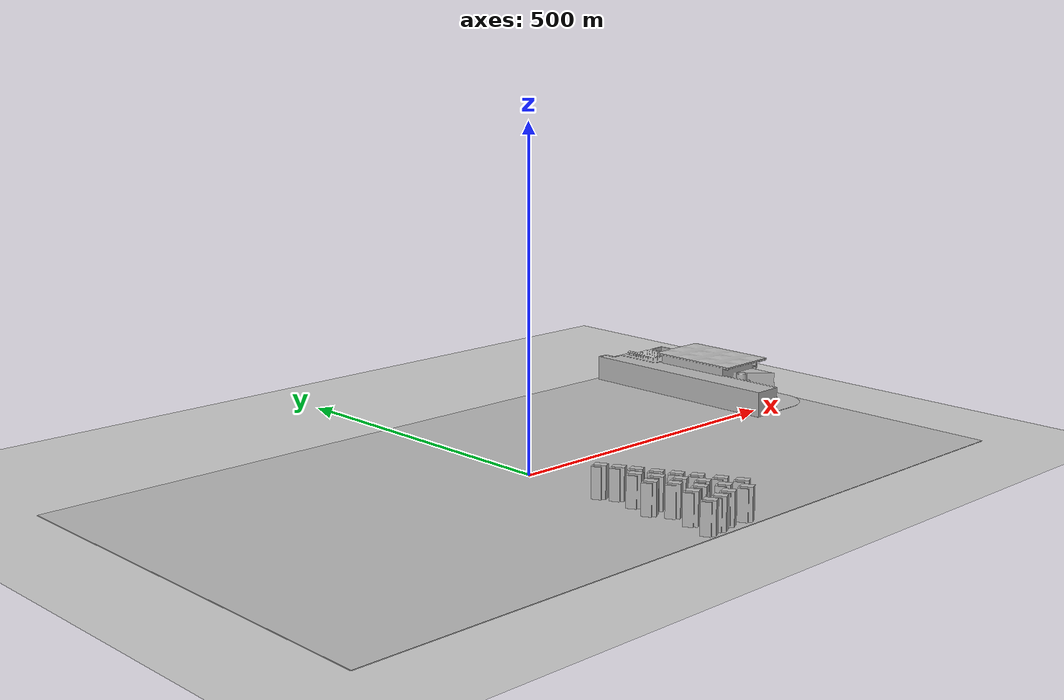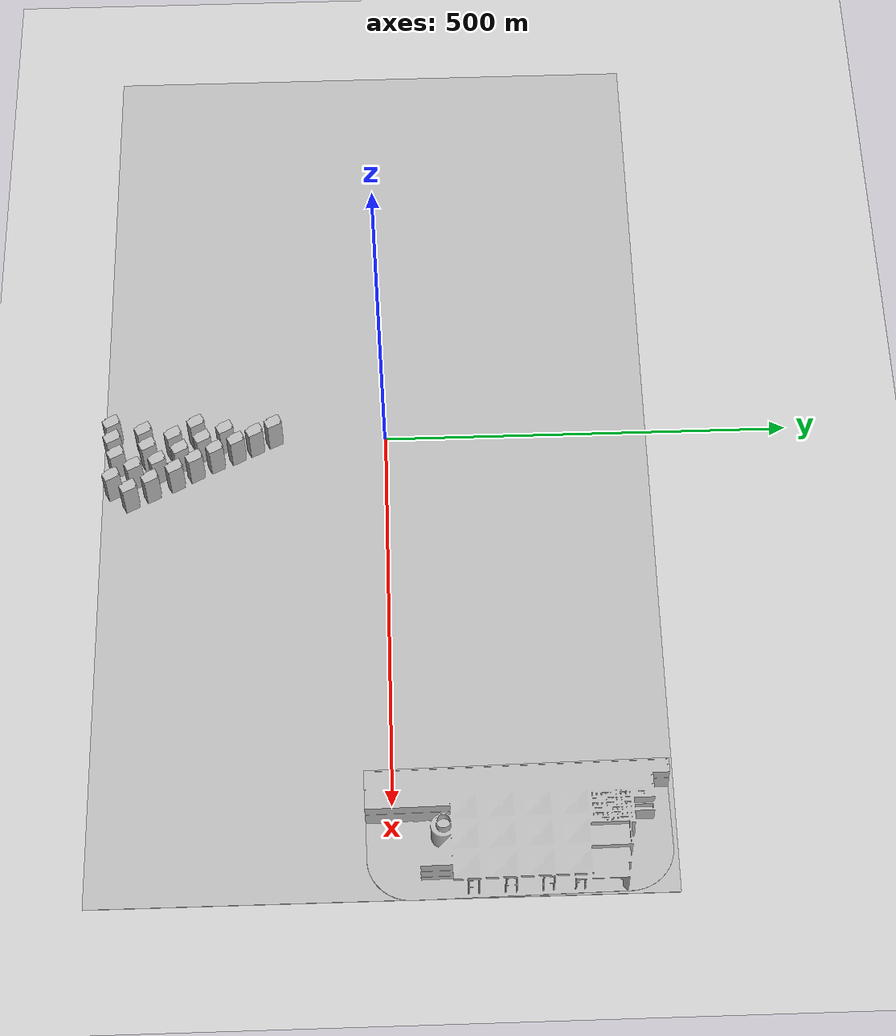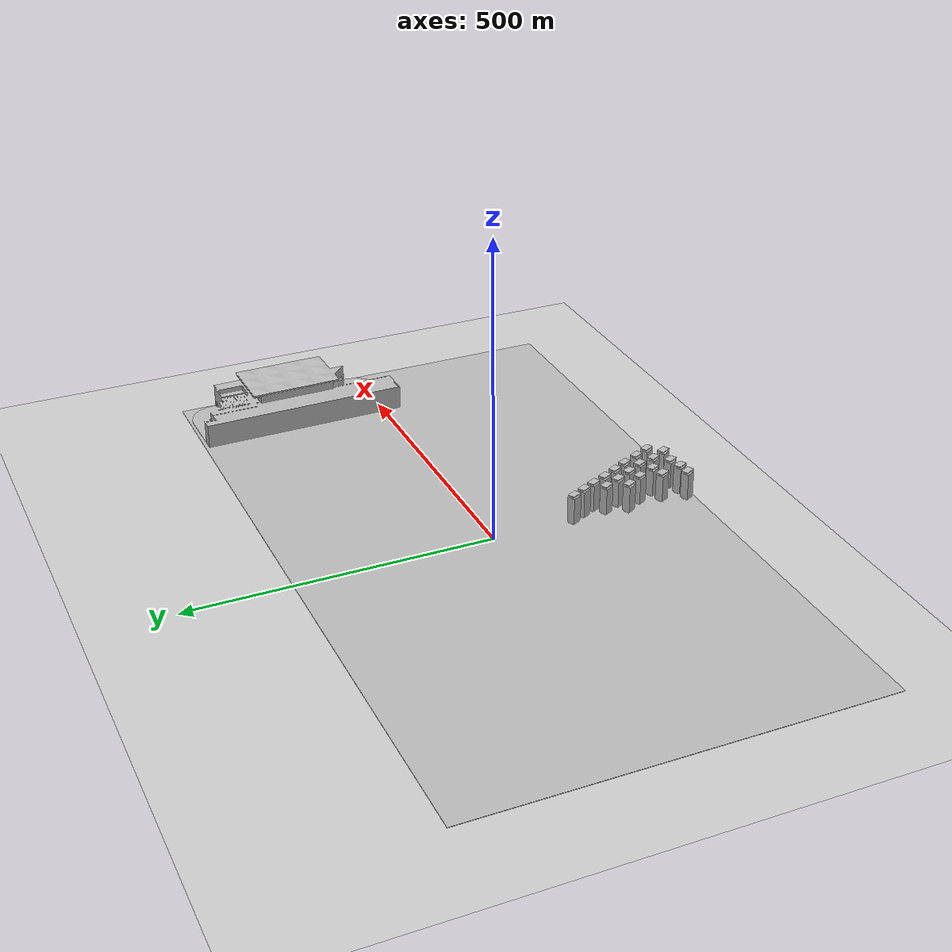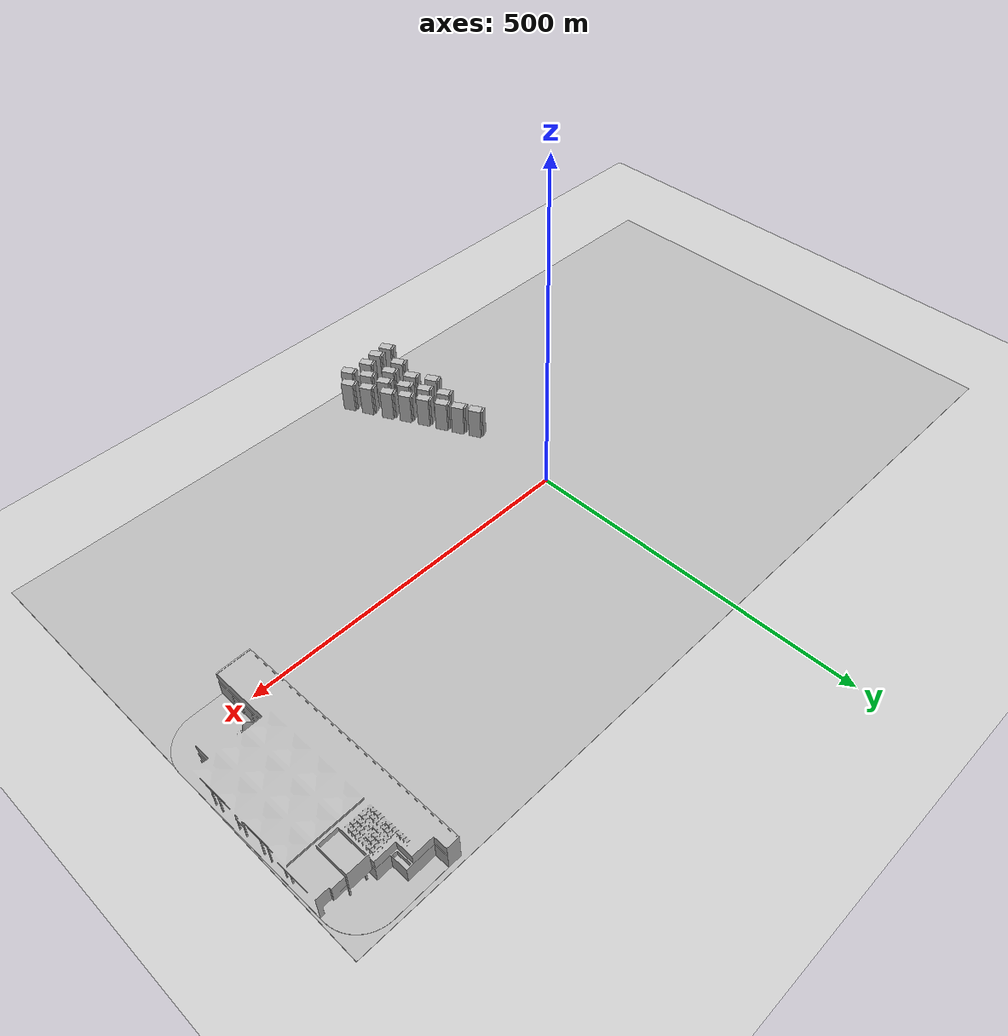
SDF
<sdf version="1.7">
 <world name="default">
  <model name="ground_plane">
   <static>1</static>
   <link name="link">
    <collision name="collision">
     <geometry><plane><normal>0 0 1</normal><size>100 100</size></plane></geometry>
     <surface><friction><ode><mu>100</mu><mu2>50</mu2></ode></friction></surface>
    </collision>
    <visual name="visual">
     <cast_shadows>0</cast_shadows>
     <geometry><plane><normal>0 0 1</normal><size>100 100</size></plane></geometry>
     <material>
      <script><uri>file://media/materials/scripts/gazebo.material</uri><name>Gazebo/Grey</name></script>
     </material>
    </visual>
   </link>
  </model>
  <model name="apartment1_clone_15_clone_3_clone">
   <static>1</static>
   <link name="link_0">
    <inertial>
     <mass>1</mass>
     <inertia>
      <ixx>0.166667</ixx>
      <ixy>0</ixy>
      <ixz>0</ixz>
      <iyy>0.166667</iyy>
      <iyz>0</iyz>
      <izz>0.166667</izz>
     </inertia>
    </inertial>
    <pose>1e-06 -0 0 0 -0 0</pose>
    <visual name="visual">
     <geometry>
      <mesh><uri>model://apartment1/scripts/apartment1.dae</uri><scale>0.3 0.3 0.4</scale></mesh>
     </geometry>
     <material>
      <lighting>1</lighting>
      <script><uri>model://apartment1/scripts/apartment1.jpg</uri><name>__default__</name></script>
      <shader type="pixel"/>
     </material>
    </visual>
    <collision name="collision">
     <geometry>
      <mesh><uri>model://apartment1/scripts/apartment1.dae</uri><scale>0.3 0.3 0.4</scale></mesh>
     </geometry>
     <surface>
      <friction>
       <ode><mu>1</mu><mu2>1</mu2><fdir1>0 0 0</fdir1><slip1>0</slip1><slip2>0</slip2></ode>
       <torsional>
        <coefficient>1</coefficient>
        <patch_radius>0</patch_radius>
        <surface_radius>0</surface_radius>
        <use_patch_radius>1</use_patch_radius>
        <ode><slip>0</slip></ode>
       </torsional>
      </friction>
      <bounce><restitution_coefficient>0</restitution_coefficient><threshold>1e+06</threshold></bounce>
      <contact>
       <collide_without_contact>0</collide_without_contact>
       <collide_without_contact_bitmask>1</collide_without_contact_bitmask>
       <collide_bitmask>1</collide_bitmask>
       <ode>
        <soft_cfm>0</soft_cfm>
        <soft_erp>0.2</soft_erp>
        <kp>1e+13</kp>
        <kd>1</kd>
        <max_vel>0.01</max_vel>
        <min_depth>0</min_depth>
       </ode>
       <bullet>
        <split_impulse>1</split_impulse>
        <split_impulse_penetration_threshold>-0.01</split_impulse_penetration_threshold>
        <soft_cfm>0</soft_cfm>
        <soft_erp>0.2</soft_erp>
        <kp>1e+13</kp>
        <kd>1</kd>
       </bullet>
      </contact>
     </surface>
    </collision>
   </link>
   <static>0</static>
   <pose>1.05623 -139.042 0 0 -0 0.446505</pose>
  </model>
  <model name="apartment1_clone_15_clone_3_clone_0">
   <static>1</static>
   <link name="link_0">
    <inertial>
     <mass>1</mass>
     <inertia>
      <ixx>0.166667</ixx>
      <ixy>0</ixy>
      <ixz>0</ixz>
      <iyy>0.166667</iyy>
      <iyz>0</iyz>
      <izz>0.166667</izz>
     </inertia>
    </inertial>
    <pose>1e-06 -0 0 0 -0 0</pose>
    <visual name="visual">
     <geometry>
      <mesh><uri>model://apartment1/scripts/apartment1.dae</uri><scale>0.3 0.3 0.4</scale></mesh>
     </geometry>
     <material>
      <lighting>1</lighting>
      <script><uri>model://apartment1/scripts/apartment1.jpg</uri><name>__default__</name></script>
      <shader type="pixel"/>
     </material>
    </visual>
    <collision name="collision">
     <geometry>
      <mesh><uri>model://apartment1/scripts/apartment1.dae</uri><scale>0.3 0.3 0.4</scale></mesh>
     </geometry>
     <surface>
      <friction>
       <ode><mu>1</mu><mu2>1</mu2><fdir1>0 0 0</fdir1><slip1>0</slip1><slip2>0</slip2></ode>
       <torsional>
        <coefficient>1</coefficient>
        <patch_radius>0</patch_radius>
        <surface_radius>0</surface_radius>
        <use_patch_radius>1</use_patch_radius>
        <ode><slip>0</slip></ode>
       </torsional>
      </friction>
      <bounce><restitution_coefficient>0</restitution_coefficient><threshold>1e+06</threshold></bounce>
      <contact>
       <collide_without_contact>0</collide_without_contact>
       <collide_without_contact_bitmask>1</collide_without_contact_bitmask>
       <collide_bitmask>1</collide_bitmask>
       <ode>
        <soft_cfm>0</soft_cfm>
        <soft_erp>0.2</soft_erp>
        <kp>1e+13</kp>
        <kd>1</kd>
        <max_vel>0.01</max_vel>
        <min_depth>0</min_depth>
       </ode>
       <bullet>
        <split_impulse>1</split_impulse>
        <split_impulse_penetration_threshold>-0.01</split_impulse_penetration_threshold>
        <soft_cfm>0</soft_cfm>
        <soft_erp>0.2</soft_erp>
        <kp>1e+13</kp>
        <kd>1</kd>
       </bullet>
      </contact>
     </surface>
    </collision>
   </link>
   <static>0</static>
   <pose>12.7683 -162.066 0 0 -0 0.473091</pose>
  </model>
  <model name="apartment1_clone_15_clone_3_clone_0_clone">
   <static>1</static>
   <link name="link_0">
    <inertial>
     <mass>1</mass>
     <inertia>
      <ixx>0.166667</ixx>
      <ixy>0</ixy>
      <ixz>0</ixz>
      <iyy>0.166667</iyy>
      <iyz>0</iyz>
      <izz>0.166667</izz>
     </inertia>
    </inertial>
    <pose>1e-06 -0 0 0 -0 0</pose>
    <visual name="visual">
     <geometry>
      <mesh><uri>model://apartment1/scripts/apartment1.dae</uri><scale>0.3 0.3 0.4</scale></mesh>
     </geometry>
     <material>
      <lighting>1</lighting>
      <script><uri>model://apartment1/scripts/apartment1.jpg</uri><name>__default__</name></script>
      <shader type="pixel"/>
     </material>
    </visual>
    <collision name="collision">
     <geometry>
      <mesh><uri>model://apartment1/scripts/apartment1.dae</uri><scale>0.3 0.3 0.4</scale></mesh>
     </geometry>
     <surface>
      <friction>
       <ode><mu>1</mu><mu2>1</mu2><fdir1>0 0 0</fdir1><slip1>0</slip1><slip2>0</slip2></ode>
       <torsional>
        <coefficient>1</coefficient>
        <patch_radius>0</patch_radius>
        <surface_radius>0</surface_radius>
        <use_patch_radius>1</use_patch_radius>
        <ode><slip>0</slip></ode>
       </torsional>
      </friction>
      <bounce><restitution_coefficient>0</restitution_coefficient><threshold>1e+06</threshold></bounce>
      <contact>
       <collide_without_contact>0</collide_without_contact>
       <collide_without_contact_bitmask>1</collide_without_contact_bitmask>
       <collide_bitmask>1</collide_bitmask>
       <ode>
        <soft_cfm>0</soft_cfm>
        <soft_erp>0.2</soft_erp>
        <kp>1e+13</kp>
        <kd>1</kd>
        <max_vel>0.01</max_vel>
        <min_depth>0</min_depth>
       </ode>
       <bullet>
        <split_impulse>1</split_impulse>
        <split_impulse_penetration_threshold>-0.01</split_impulse_penetration_threshold>
        <soft_cfm>0</soft_cfm>
        <soft_erp>0.2</soft_erp>
        <kp>1e+13</kp>
        <kd>1</kd>
       </bullet>
      </contact>
     </surface>
    </collision>
   </link>
   <static>0</static>
   <pose>23.7736 -184.606 0 0 -0 0.473091</pose>
  </model>
  <model name="apartment1_clone_15_clone_3_clone_0_clone_0">
   <static>1</static>
   <link name="link_0">
    <inertial>
     <mass>1</mass>
     <inertia>
      <ixx>0.166667</ixx>
      <ixy>0</ixy>
      <ixz>0</ixz>
      <iyy>0.166667</iyy>
      <iyz>0</iyz>
      <izz>0.166667</izz>
     </inertia>
    </inertial>
    <pose>1e-06 -0 0 0 -0 0</pose>
    <visual name="visual">
     <geometry>
      <mesh><uri>model://apartment1/scripts/apartment1.dae</uri><scale>0.3 0.3 0.4</scale></mesh>
     </geometry>
     <material>
      <lighting>1</lighting>
      <script><uri>model://apartment1/scripts/apartment1.jpg</uri><name>__default__</name></script>
      <shader type="pixel"/>
     </material>
    </visual>
    <collision name="collision">
     <geometry>
      <mesh><uri>model://apartment1/scripts/apartment1.dae</uri><scale>0.3 0.3 0.4</scale></mesh>
     </geometry>
     <surface>
      <friction>
       <ode><mu>1</mu><mu2>1</mu2><fdir1>0 0 0</fdir1><slip1>0</slip1><slip2>0</slip2></ode>
       <torsional>
        <coefficient>1</coefficient>
        <patch_radius>0</patch_radius>
        <surface_radius>0</surface_radius>
        <use_patch_radius>1</use_patch_radius>
        <ode><slip>0</slip></ode>
       </torsional>
      </friction>
      <bounce><restitution_coefficient>0</restitution_coefficient><threshold>1e+06</threshold></bounce>
      <contact>
       <collide_without_contact>0</collide_without_contact>
       <collide_without_contact_bitmask>1</collide_without_contact_bitmask>
       <collide_bitmask>1</collide_bitmask>
       <ode>
        <soft_cfm>0</soft_cfm>
        <soft_erp>0.2</soft_erp>
        <kp>1e+13</kp>
        <kd>1</kd>
        <max_vel>0.01</max_vel>
        <min_depth>0</min_depth>
       </ode>
       <bullet>
        <split_impulse>1</split_impulse>
        <split_impulse_penetration_threshold>-0.01</split_impulse_penetration_threshold>
        <soft_cfm>0</soft_cfm>
        <soft_erp>0.2</soft_erp>
        <kp>1e+13</kp>
        <kd>1</kd>
       </bullet>
      </contact>
     </surface>
    </collision>
   </link>
   <static>0</static>
   <pose>35.3869 -210.334 0 0 -0 0.473091</pose>
  </model>
  <model name="apartment1_clone_15_clone_3_clone_0_clone_1">
   <static>1</static>
   <link name="link_0">
    <inertial>
     <mass>1</mass>
     <inertia>
      <ixx>0.166667</ixx>
      <ixy>0</ixy>
      <ixz>0</ixz>
      <iyy>0.166667</iyy>
      <iyz>0</iyz>
      <izz>0.166667</izz>
     </inertia>
    </inertial>
    <pose>1e-06 -0 0 0 -0 0</pose>
    <visual name="visual">
     <geometry>
      <mesh><uri>model://apartment1/scripts/apartment1.dae</uri><scale>0.3 0.3 0.4</scale></mesh>
     </geometry>
     <material>
      <lighting>1</lighting>
      <script><uri>model://apartment1/scripts/apartment1.jpg</uri><name>__default__</name></script>
      <shader type="pixel"/>
     </material>
    </visual>
    <collision name="collision">
     <geometry>
      <mesh><uri>model://apartment1/scripts/apartment1.dae</uri><scale>0.3 0.3 0.4</scale></mesh>
     </geometry>
     <surface>
      <friction>
       <ode><mu>1</mu><mu2>1</mu2><fdir1>0 0 0</fdir1><slip1>0</slip1><slip2>0</slip2></ode>
       <torsional>
        <coefficient>1</coefficient>
        <patch_radius>0</patch_radius>
        <surface_radius>0</surface_radius>
        <use_patch_radius>1</use_patch_radius>
        <ode><slip>0</slip></ode>
       </torsional>
      </friction>
      <bounce><restitution_coefficient>0</restitution_coefficient><threshold>1e+06</threshold></bounce>
      <contact>
       <collide_without_contact>0</collide_without_contact>
       <collide_without_contact_bitmask>1</collide_without_contact_bitmask>
       <collide_bitmask>1</collide_bitmask>
       <ode>
        <soft_cfm>0</soft_cfm>
        <soft_erp>0.2</soft_erp>
        <kp>1e+13</kp>
        <kd>1</kd>
        <max_vel>0.01</max_vel>
        <min_depth>0</min_depth>
       </ode>
       <bullet>
        <split_impulse>1</split_impulse>
        <split_impulse_penetration_threshold>-0.01</split_impulse_penetration_threshold>
        <soft_cfm>0</soft_cfm>
        <soft_erp>0.2</soft_erp>
        <kp>1e+13</kp>
        <kd>1</kd>
       </bullet>
      </contact>
     </surface>
    </collision>
   </link>
   <static>0</static>
   <pose>48.2751 -235.277 0 0 -0 0.473091</pose>
  </model>
  <model name="apartment1_clone_15_clone_3_clone_0_clone_2">
   <static>1</static>
   <link name="link_0">
    <inertial>
     <mass>1</mass>
     <inertia>
      <ixx>0.166667</ixx>
      <ixy>0</ixy>
      <ixz>0</ixz>
      <iyy>0.166667</iyy>
      <iyz>0</iyz>
      <izz>0.166667</izz>
     </inertia>
    </inertial>
    <pose>1e-06 -0 0 0 -0 0</pose>
    <visual name="visual">
     <geometry>
      <mesh><uri>model://apartment1/scripts/apartment1.dae</uri><scale>0.3 0.3 0.4</scale></mesh>
     </geometry>
     <material>
      <lighting>1</lighting>
      <script><uri>model://apartment1/scripts/apartment1.jpg</uri><name>__default__</name></script>
      <shader type="pixel"/>
     </material>
    </visual>
    <collision name="collision">
     <geometry>
      <mesh><uri>model://apartment1/scripts/apartment1.dae</uri><scale>0.3 0.3 0.4</scale></mesh>
     </geometry>
     <surface>
      <friction>
       <ode><mu>1</mu><mu2>1</mu2><fdir1>0 0 0</fdir1><slip1>0</slip1><slip2>0</slip2></ode>
       <torsional>
        <coefficient>1</coefficient>
        <patch_radius>0</patch_radius>
        <surface_radius>0</surface_radius>
        <use_patch_radius>1</use_patch_radius>
        <ode><slip>0</slip></ode>
       </torsional>
      </friction>
      <bounce><restitution_coefficient>0</restitution_coefficient><threshold>1e+06</threshold></bounce>
      <contact>
       <collide_without_contact>0</collide_without_contact>
       <collide_without_contact_bitmask>1</collide_without_contact_bitmask>
       <collide_bitmask>1</collide_bitmask>
       <ode>
        <soft_cfm>0</soft_cfm>
        <soft_erp>0.2</soft_erp>
        <kp>1e+13</kp>
        <kd>1</kd>
        <max_vel>0.01</max_vel>
        <min_depth>0</min_depth>
       </ode>
       <bullet>
        <split_impulse>1</split_impulse>
        <split_impulse_penetration_threshold>-0.01</split_impulse_penetration_threshold>
        <soft_cfm>0</soft_cfm>
        <soft_erp>0.2</soft_erp>
        <kp>1e+13</kp>
        <kd>1</kd>
       </bullet>
      </contact>
     </surface>
    </collision>
   </link>
   <static>0</static>
   <pose>61.6411 -259.292 0 0 -0 0.473091</pose>
  </model>
  <model name="apartment1_clone_15_clone_3_clone_0_clone_3">
   <static>1</static>
   <link name="link_0">
    <inertial>
     <mass>1</mass>
     <inertia>
      <ixx>0.166667</ixx>
      <ixy>0</ixy>
      <ixz>0</ixz>
      <iyy>0.166667</iyy>
      <iyz>0</iyz>
      <izz>0.166667</izz>
     </inertia>
    </inertial>
    <pose>1e-06 -0 0 0 -0 0</pose>
    <visual name="visual">
     <geometry>
      <mesh><uri>model://apartment1/scripts/apartment1.dae</uri><scale>0.3 0.3 0.4</scale></mesh>
     </geometry>
     <material>
      <lighting>1</lighting>
      <script><uri>model://apartment1/scripts/apartment1.jpg</uri><name>__default__</name></script>
      <shader type="pixel"/>
     </material>
    </visual>
    <collision name="collision">
     <geometry>
      <mesh><uri>model://apartment1/scripts/apartment1.dae</uri><scale>0.3 0.3 0.4</scale></mesh>
     </geometry>
     <surface>
      <friction>
       <ode><mu>1</mu><mu2>1</mu2><fdir1>0 0 0</fdir1><slip1>0</slip1><slip2>0</slip2></ode>
       <torsional>
        <coefficient>1</coefficient>
        <patch_radius>0</patch_radius>
        <surface_radius>0</surface_radius>
        <use_patch_radius>1</use_patch_radius>
        <ode><slip>0</slip></ode>
       </torsional>
      </friction>
      <bounce><restitution_coefficient>0</restitution_coefficient><threshold>1e+06</threshold></bounce>
      <contact>
       <collide_without_contact>0</collide_without_contact>
       <collide_without_contact_bitmask>1</collide_without_contact_bitmask>
       <collide_bitmask>1</collide_bitmask>
       <ode>
        <soft_cfm>0</soft_cfm>
        <soft_erp>0.2</soft_erp>
        <kp>1e+13</kp>
        <kd>1</kd>
        <max_vel>0.01</max_vel>
        <min_depth>0</min_depth>
       </ode>
       <bullet>
        <split_impulse>1</split_impulse>
        <split_impulse_penetration_threshold>-0.01</split_impulse_penetration_threshold>
        <soft_cfm>0</soft_cfm>
        <soft_erp>0.2</soft_erp>
        <kp>1e+13</kp>
        <kd>1</kd>
       </bullet>
      </contact>
     </surface>
    </collision>
   </link>
   <static>0</static>
   <pose>75.4809 -288.417 0 0 -0 0.473091</pose>
  </model>
  <model name="apartment1_clone_15_clone_3_clone_0_clone_4">
   <static>1</static>
   <link name="link_0">
    <inertial>
     <mass>1</mass>
     <inertia>
      <ixx>0.166667</ixx>
      <ixy>0</ixy>
      <ixz>0</ixz>
      <iyy>0.166667</iyy>
      <iyz>0</iyz>
      <izz>0.166667</izz>
     </inertia>
    </inertial>
    <pose>1e-06 -0 0 0 -0 0</pose>
    <visual name="visual">
     <geometry>
      <mesh><uri>model://apartment1/scripts/apartment1.dae</uri><scale>0.3 0.3 0.4</scale></mesh>
     </geometry>
     <material>
      <lighting>1</lighting>
      <script><uri>model://apartment1/scripts/apartment1.jpg</uri><name>__default__</name></script>
      <shader type="pixel"/>
     </material>
    </visual>
    <collision name="collision">
     <geometry>
      <mesh><uri>model://apartment1/scripts/apartment1.dae</uri><scale>0.3 0.3 0.4</scale></mesh>
     </geometry>
     <surface>
      <friction>
       <ode><mu>1</mu><mu2>1</mu2><fdir1>0 0 0</fdir1><slip1>0</slip1><slip2>0</slip2></ode>
       <torsional>
        <coefficient>1</coefficient>
        <patch_radius>0</patch_radius>
        <surface_radius>0</surface_radius>
        <use_patch_radius>1</use_patch_radius>
        <ode><slip>0</slip></ode>
       </torsional>
      </friction>
      <bounce><restitution_coefficient>0</restitution_coefficient><threshold>1e+06</threshold></bounce>
      <contact>
       <collide_without_contact>0</collide_without_contact>
       <collide_without_contact_bitmask>1</collide_without_contact_bitmask>
       <collide_bitmask>1</collide_bitmask>
       <ode>
        <soft_cfm>0</soft_cfm>
        <soft_erp>0.2</soft_erp>
        <kp>1e+13</kp>
        <kd>1</kd>
        <max_vel>0.01</max_vel>
        <min_depth>0</min_depth>
       </ode>
       <bullet>
        <split_impulse>1</split_impulse>
        <split_impulse_penetration_threshold>-0.01</split_impulse_penetration_threshold>
        <soft_cfm>0</soft_cfm>
        <soft_erp>0.2</soft_erp>
        <kp>1e+13</kp>
        <kd>1</kd>
       </bullet>
      </contact>
     </surface>
    </collision>
   </link>
   <static>0</static>
   <pose>88.1818 -314.395 0 0 -0 0.473091</pose>
  </model>
  <model name="apartment1_clone_15_clone_3_clone_0_clone_7">
   <static>1</static>
   <link name="link_0">
    <inertial>
     <mass>1</mass>
     <inertia>
      <ixx>0.166667</ixx>
      <ixy>0</ixy>
      <ixz>0</ixz>
      <iyy>0.166667</iyy>
      <iyz>0</iyz>
      <izz>0.166667</izz>
     </inertia>
    </inertial>
    <pose>1e-06 -0 0 0 -0 0</pose>
    <visual name="visual">
     <geometry>
      <mesh><uri>model://apartment1/scripts/apartment1.dae</uri><scale>0.3 0.3 0.4</scale></mesh>
     </geometry>
     <material>
      <lighting>1</lighting>
      <script><uri>model://apartment1/scripts/apartment1.jpg</uri><name>__default__</name></script>
      <shader type="pixel"/>
     </material>
    </visual>
    <collision name="collision">
     <geometry>
      <mesh><uri>model://apartment1/scripts/apartment1.dae</uri><scale>0.3 0.3 0.4</scale></mesh>
     </geometry>
     <surface>
      <friction>
       <ode><mu>1</mu><mu2>1</mu2><fdir1>0 0 0</fdir1><slip1>0</slip1><slip2>0</slip2></ode>
       <torsional>
        <coefficient>1</coefficient>
        <patch_radius>0</patch_radius>
        <surface_radius>0</surface_radius>
        <use_patch_radius>1</use_patch_radius>
        <ode><slip>0</slip></ode>
       </torsional>
      </friction>
      <bounce><restitution_coefficient>0</restitution_coefficient><threshold>1e+06</threshold></bounce>
      <contact>
       <collide_without_contact>0</collide_without_contact>
       <collide_without_contact_bitmask>1</collide_without_contact_bitmask>
       <collide_bitmask>1</collide_bitmask>
       <ode>
        <soft_cfm>0</soft_cfm>
        <soft_erp>0.2</soft_erp>
        <kp>1e+13</kp>
        <kd>1</kd>
        <max_vel>0.01</max_vel>
        <min_depth>0</min_depth>
       </ode>
       <bullet>
        <split_impulse>1</split_impulse>
        <split_impulse_penetration_threshold>-0.01</split_impulse_penetration_threshold>
        <soft_cfm>0</soft_cfm>
        <soft_erp>0.2</soft_erp>
        <kp>1e+13</kp>
        <kd>1</kd>
       </bullet>
      </contact>
     </surface>
    </collision>
   </link>
   <static>0</static>
   <pose>56.6933 -309.959 0 0 -0 0.473091</pose>
  </model>
  <model name="apartment1_clone_15_clone_3_clone_0_clone_8">
   <static>1</static>
   <link name="link_0">
    <inertial>
     <mass>1</mass>
     <inertia>
      <ixx>0.166667</ixx>
      <ixy>0</ixy>
      <ixz>0</ixz>
      <iyy>0.166667</iyy>
      <iyz>0</iyz>
      <izz>0.166667</izz>
     </inertia>
    </inertial>
    <pose>1e-06 -0 0 0 -0 0</pose>
    <visual name="visual">
     <geometry>
      <mesh><uri>model://apartment1/scripts/apartment1.dae</uri><scale>0.3 0.3 0.4</scale></mesh>
     </geometry>
     <material>
      <lighting>1</lighting>
      <script><uri>model://apartment1/scripts/apartment1.jpg</uri><name>__default__</name></script>
      <shader type="pixel"/>
     </material>
    </visual>
    <collision name="collision">
     <geometry>
      <mesh><uri>model://apartment1/scripts/apartment1.dae</uri><scale>0.3 0.3 0.4</scale></mesh>
     </geometry>
     <surface>
      <friction>
       <ode><mu>1</mu><mu2>1</mu2><fdir1>0 0 0</fdir1><slip1>0</slip1><slip2>0</slip2></ode>
       <torsional>
        <coefficient>1</coefficient>
        <patch_radius>0</patch_radius>
        <surface_radius>0</surface_radius>
        <use_patch_radius>1</use_patch_radius>
        <ode><slip>0</slip></ode>
       </torsional>
      </friction>
      <bounce><restitution_coefficient>0</restitution_coefficient><threshold>1e+06</threshold></bounce>
      <contact>
       <collide_without_contact>0</collide_without_contact>
       <collide_without_contact_bitmask>1</collide_without_contact_bitmask>
       <collide_bitmask>1</collide_bitmask>
       <ode>
        <soft_cfm>0</soft_cfm>
        <soft_erp>0.2</soft_erp>
        <kp>1e+13</kp>
        <kd>1</kd>
        <max_vel>0.01</max_vel>
        <min_depth>0</min_depth>
       </ode>
       <bullet>
        <split_impulse>1</split_impulse>
        <split_impulse_penetration_threshold>-0.01</split_impulse_penetration_threshold>
        <soft_cfm>0</soft_cfm>
        <soft_erp>0.2</soft_erp>
        <kp>1e+13</kp>
        <kd>1</kd>
       </bullet>
      </contact>
     </surface>
    </collision>
   </link>
   <static>0</static>
   <pose>49.244 -280.71 0 0 -0 0.473091</pose>
  </model>
  <model name="apartment1_clone_15_clone_3_clone_0_clone_9">
   <static>1</static>
   <link name="link_0">
    <inertial>
     <mass>1</mass>
     <inertia>
      <ixx>0.166667</ixx>
      <ixy>0</ixy>
      <ixz>0</ixz>
      <iyy>0.166667</iyy>
      <iyz>0</iyz>
      <izz>0.166667</izz>
     </inertia>
    </inertial>
    <pose>1e-06 -0 0 0 -0 0</pose>
    <visual name="visual">
     <geometry>
      <mesh><uri>model://apartment1/scripts/apartment1.dae</uri><scale>0.3 0.3 0.4</scale></mesh>
     </geometry>
     <material>
      <lighting>1</lighting>
      <script><uri>model://apartment1/scripts/apartment1.jpg</uri><name>__default__</name></script>
      <shader type="pixel"/>
     </material>
    </visual>
    <collision name="collision">
     <geometry>
      <mesh><uri>model://apartment1/scripts/apartment1.dae</uri><scale>0.3 0.3 0.4</scale></mesh>
     </geometry>
     <surface>
      <friction>
       <ode><mu>1</mu><mu2>1</mu2><fdir1>0 0 0</fdir1><slip1>0</slip1><slip2>0</slip2></ode>
       <torsional>
        <coefficient>1</coefficient>
        <patch_radius>0</patch_radius>
        <surface_radius>0</surface_radius>
        <use_patch_radius>1</use_patch_radius>
        <ode><slip>0</slip></ode>
       </torsional>
      </friction>
      <bounce><restitution_coefficient>0</restitution_coefficient><threshold>1e+06</threshold></bounce>
      <contact>
       <collide_without_contact>0</collide_without_contact>
       <collide_without_contact_bitmask>1</collide_without_contact_bitmask>
       <collide_bitmask>1</collide_bitmask>
       <ode>
        <soft_cfm>0</soft_cfm>
        <soft_erp>0.2</soft_erp>
        <kp>1e+13</kp>
        <kd>1</kd>
        <max_vel>0.01</max_vel>
        <min_depth>0</min_depth>
       </ode>
       <bullet>
        <split_impulse>1</split_impulse>
        <split_impulse_penetration_threshold>-0.01</split_impulse_penetration_threshold>
        <soft_cfm>0</soft_cfm>
        <soft_erp>0.2</soft_erp>
        <kp>1e+13</kp>
        <kd>1</kd>
       </bullet>
      </contact>
     </surface>
    </collision>
   </link>
   <static>0</static>
   <pose>34.0112 -253.38 0 0 -0 0.473091</pose>
  </model>
  <model name="apartment1_clone_15_clone_3_clone_0_clone_10">
   <static>1</static>
   <link name="link_0">
    <inertial>
     <mass>1</mass>
     <inertia>
      <ixx>0.166667</ixx>
      <ixy>0</ixy>
      <ixz>0</ixz>
      <iyy>0.166667</iyy>
      <iyz>0</iyz>
      <izz>0.166667</izz>
     </inertia>
    </inertial>
    <pose>1e-06 -0 0 0 -0 0</pose>
    <visual name="visual">
     <geometry>
      <mesh><uri>model://apartment1/scripts/apartment1.dae</uri><scale>0.3 0.3 0.4</scale></mesh>
     </geometry>
     <material>
      <lighting>1</lighting>
      <script><uri>model://apartment1/scripts/apartment1.jpg</uri><name>__default__</name></script>
      <shader type="pixel"/>
     </material>
    </visual>
    <collision name="collision">
     <geometry>
      <mesh><uri>model://apartment1/scripts/apartment1.dae</uri><scale>0.3 0.3 0.4</scale></mesh>
     </geometry>
     <surface>
      <friction>
       <ode><mu>1</mu><mu2>1</mu2><fdir1>0 0 0</fdir1><slip1>0</slip1><slip2>0</slip2></ode>
       <torsional>
        <coefficient>1</coefficient>
        <patch_radius>0</patch_radius>
        <surface_radius>0</surface_radius>
        <use_patch_radius>1</use_patch_radius>
        <ode><slip>0</slip></ode>
       </torsional>
      </friction>
      <bounce><restitution_coefficient>0</restitution_coefficient><threshold>1e+06</threshold></bounce>
      <contact>
       <collide_without_contact>0</collide_without_contact>
       <collide_without_contact_bitmask>1</collide_without_contact_bitmask>
       <collide_bitmask>1</collide_bitmask>
       <ode>
        <soft_cfm>0</soft_cfm>
        <soft_erp>0.2</soft_erp>
        <kp>1e+13</kp>
        <kd>1</kd>
        <max_vel>0.01</max_vel>
        <min_depth>0</min_depth>
       </ode>
       <bullet>
        <split_impulse>1</split_impulse>
        <split_impulse_penetration_threshold>-0.01</split_impulse_penetration_threshold>
        <soft_cfm>0</soft_cfm>
        <soft_erp>0.2</soft_erp>
        <kp>1e+13</kp>
        <kd>1</kd>
       </bullet>
      </contact>
     </surface>
    </collision>
   </link>
   <static>0</static>
   <pose>19.678 -226.09 0 0 -0 0.473091</pose>
  </model>
  <model name="apartment1_clone_15_clone_3_clone_0_clone_11">
   <static>1</static>
   <link name="link_0">
    <inertial>
     <mass>1</mass>
     <inertia>
      <ixx>0.166667</ixx>
      <ixy>0</ixy>
      <ixz>0</ixz>
      <iyy>0.166667</iyy>
      <iyz>0</iyz>
      <izz>0.166667</izz>
     </inertia>
    </inertial>
    <pose>1e-06 -0 0 0 -0 0</pose>
    <visual name="visual">
     <geometry>
      <mesh><uri>model://apartment1/scripts/apartment1.dae</uri><scale>0.3 0.3 0.4</scale></mesh>
     </geometry>
     <material>
      <lighting>1</lighting>
      <script><uri>model://apartment1/scripts/apartment1.jpg</uri><name>__default__</name></script>
      <shader type="pixel"/>
     </material>
    </visual>
    <collision name="collision">
     <geometry>
      <mesh><uri>model://apartment1/scripts/apartment1.dae</uri><scale>0.3 0.3 0.4</scale></mesh>
     </geometry>
     <surface>
      <friction>
       <ode><mu>1</mu><mu2>1</mu2><fdir1>0 0 0</fdir1><slip1>0</slip1><slip2>0</slip2></ode>
       <torsional>
        <coefficient>1</coefficient>
        <patch_radius>0</patch_radius>
        <surface_radius>0</surface_radius>
        <use_patch_radius>1</use_patch_radius>
        <ode><slip>0</slip></ode>
       </torsional>
      </friction>
      <bounce><restitution_coefficient>0</restitution_coefficient><threshold>1e+06</threshold></bounce>
      <contact>
       <collide_without_contact>0</collide_without_contact>
       <collide_without_contact_bitmask>1</collide_without_contact_bitmask>
       <collide_bitmask>1</collide_bitmask>
       <ode>
        <soft_cfm>0</soft_cfm>
        <soft_erp>0.2</soft_erp>
        <kp>1e+13</kp>
        <kd>1</kd>
        <max_vel>0.01</max_vel>
        <min_depth>0</min_depth>
       </ode>
       <bullet>
        <split_impulse>1</split_impulse>
        <split_impulse_penetration_threshold>-0.01</split_impulse_penetration_threshold>
        <soft_cfm>0</soft_cfm>
        <soft_erp>0.2</soft_erp>
        <kp>1e+13</kp>
        <kd>1</kd>
       </bullet>
      </contact>
     </surface>
    </collision>
   </link>
   <static>0</static>
   <pose>6.86659 -198.522 0 0 -0 0.473091</pose>
  </model>
  <model name="apartment1_clone_15_clone_3_clone_0_clone_17">
   <static>1</static>
   <link name="link_0">
    <inertial>
     <mass>1</mass>
     <inertia>
      <ixx>0.166667</ixx>
      <ixy>0</ixy>
      <ixz>0</ixz>
      <iyy>0.166667</iyy>
      <iyz>0</iyz>
      <izz>0.166667</izz>
     </inertia>
    </inertial>
    <pose>1e-06 -0 0 0 -0 0</pose>
    <visual name="visual">
     <geometry>
      <mesh><uri>model://apartment1/scripts/apartment1.dae</uri><scale>0.3 0.3 0.4</scale></mesh>
     </geometry>
     <material>
      <lighting>1</lighting>
      <script><uri>model://apartment1/scripts/apartment1.jpg</uri><name>__default__</name></script>
      <shader type="pixel"/>
     </material>
    </visual>
    <collision name="collision">
     <geometry>
      <mesh><uri>model://apartment1/scripts/apartment1.dae</uri><scale>0.3 0.3 0.4</scale></mesh>
     </geometry>
     <surface>
      <friction>
       <ode><mu>1</mu><mu2>1</mu2><fdir1>0 0 0</fdir1><slip1>0</slip1><slip2>0</slip2></ode>
       <torsional>
        <coefficient>1</coefficient>
        <patch_radius>0</patch_radius>
        <surface_radius>0</surface_radius>
        <use_patch_radius>1</use_patch_radius>
        <ode><slip>0</slip></ode>
       </torsional>
      </friction>
      <bounce><restitution_coefficient>0</restitution_coefficient><threshold>1e+06</threshold></bounce>
      <contact>
       <collide_without_contact>0</collide_without_contact>
       <collide_without_contact_bitmask>1</collide_without_contact_bitmask>
       <collide_bitmask>1</collide_bitmask>
       <ode>
        <soft_cfm>0</soft_cfm>
        <soft_erp>0.2</soft_erp>
        <kp>1e+13</kp>
        <kd>1</kd>
        <max_vel>0.01</max_vel>
        <min_depth>0</min_depth>
       </ode>
       <bullet>
        <split_impulse>1</split_impulse>
        <split_impulse_penetration_threshold>-0.01</split_impulse_penetration_threshold>
        <soft_cfm>0</soft_cfm>
        <soft_erp>0.2</soft_erp>
        <kp>1e+13</kp>
        <kd>1</kd>
       </bullet>
      </contact>
     </surface>
    </collision>
   </link>
   <static>0</static>
   <pose>-2.78393 -234.386 0 0 -0 0.473091</pose>
  </model>
  <model name="apartment1_clone_15_clone_3_clone_0_clone_18">
   <static>1</static>
   <link name="link_0">
    <inertial>
     <mass>1</mass>
     <inertia>
      <ixx>0.166667</ixx>
      <ixy>0</ixy>
      <ixz>0</ixz>
      <iyy>0.166667</iyy>
      <iyz>0</iyz>
      <izz>0.166667</izz>
     </inertia>
    </inertial>
    <pose>1e-06 -0 0 0 -0 0</pose>
    <visual name="visual">
     <geometry>
      <mesh><uri>model://apartment1/scripts/apartment1.dae</uri><scale>0.3 0.3 0.4</scale></mesh>
     </geometry>
     <material>
      <lighting>1</lighting>
      <script><uri>model://apartment1/scripts/apartment1.jpg</uri><name>__default__</name></script>
      <shader type="pixel"/>
     </material>
    </visual>
    <collision name="collision">
     <geometry>
      <mesh><uri>model://apartment1/scripts/apartment1.dae</uri><scale>0.3 0.3 0.4</scale></mesh>
     </geometry>
     <surface>
      <friction>
       <ode><mu>1</mu><mu2>1</mu2><fdir1>0 0 0</fdir1><slip1>0</slip1><slip2>0</slip2></ode>
       <torsional>
        <coefficient>1</coefficient>
        <patch_radius>0</patch_radius>
        <surface_radius>0</surface_radius>
        <use_patch_radius>1</use_patch_radius>
        <ode><slip>0</slip></ode>
       </torsional>
      </friction>
      <bounce><restitution_coefficient>0</restitution_coefficient><threshold>1e+06</threshold></bounce>
      <contact>
       <collide_without_contact>0</collide_without_contact>
       <collide_without_contact_bitmask>1</collide_without_contact_bitmask>
       <collide_bitmask>1</collide_bitmask>
       <ode>
        <soft_cfm>0</soft_cfm>
        <soft_erp>0.2</soft_erp>
        <kp>1e+13</kp>
        <kd>1</kd>
        <max_vel>0.01</max_vel>
        <min_depth>0</min_depth>
       </ode>
       <bullet>
        <split_impulse>1</split_impulse>
        <split_impulse_penetration_threshold>-0.01</split_impulse_penetration_threshold>
        <soft_cfm>0</soft_cfm>
        <soft_erp>0.2</soft_erp>
        <kp>1e+13</kp>
        <kd>1</kd>
       </bullet>
      </contact>
     </surface>
    </collision>
   </link>
   <static>0</static>
   <pose>13.4941 -262.119 0 0 -0 0.473091</pose>
  </model>
  <model name="apartment1_clone_15_clone_3_clone_0_clone_19">
   <static>1</static>
   <link name="link_0">
    <inertial>
     <mass>1</mass>
     <inertia>
      <ixx>0.166667</ixx>
      <ixy>0</ixy>
      <ixz>0</ixz>
      <iyy>0.166667</iyy>
      <iyz>0</iyz>
      <izz>0.166667</izz>
     </inertia>
    </inertial>
    <pose>1e-06 -0 0 0 -0 0</pose>
    <visual name="visual">
     <geometry>
      <mesh><uri>model://apartment1/scripts/apartment1.dae</uri><scale>0.3 0.3 0.4</scale></mesh>
     </geometry>
     <material>
      <lighting>1</lighting>
      <script><uri>model://apartment1/scripts/apartment1.jpg</uri><name>__default__</name></script>
      <shader type="pixel"/>
     </material>
    </visual>
    <collision name="collision">
     <geometry>
      <mesh><uri>model://apartment1/scripts/apartment1.dae</uri><scale>0.3 0.3 0.4</scale></mesh>
     </geometry>
     <surface>
      <friction>
       <ode><mu>1</mu><mu2>1</mu2><fdir1>0 0 0</fdir1><slip1>0</slip1><slip2>0</slip2></ode>
       <torsional>
        <coefficient>1</coefficient>
        <patch_radius>0</patch_radius>
        <surface_radius>0</surface_radius>
        <use_patch_radius>1</use_patch_radius>
        <ode><slip>0</slip></ode>
       </torsional>
      </friction>
      <bounce><restitution_coefficient>0</restitution_coefficient><threshold>1e+06</threshold></bounce>
      <contact>
       <collide_without_contact>0</collide_without_contact>
       <collide_without_contact_bitmask>1</collide_without_contact_bitmask>
       <collide_bitmask>1</collide_bitmask>
       <ode>
        <soft_cfm>0</soft_cfm>
        <soft_erp>0.2</soft_erp>
        <kp>1e+13</kp>
        <kd>1</kd>
        <max_vel>0.01</max_vel>
        <min_depth>0</min_depth>
       </ode>
       <bullet>
        <split_impulse>1</split_impulse>
        <split_impulse_penetration_threshold>-0.01</split_impulse_penetration_threshold>
        <soft_cfm>0</soft_cfm>
        <soft_erp>0.2</soft_erp>
        <kp>1e+13</kp>
        <kd>1</kd>
       </bullet>
      </contact>
     </surface>
    </collision>
   </link>
   <static>0</static>
   <pose>28.1585 -293.177 0 0 -0 0.473091</pose>
  </model>
  <model name="apartment1_clone_15_clone_3_clone_0_clone_20">
   <static>1</static>
   <link name="link_0">
    <inertial>
     <mass>1</mass>
     <inertia>
      <ixx>0.166667</ixx>
      <ixy>0</ixy>
      <ixz>0</ixz>
      <iyy>0.166667</iyy>
      <iyz>0</iyz>
      <izz>0.166667</izz>
     </inertia>
    </inertial>
    <pose>1e-06 -0 0 0 -0 0</pose>
    <visual name="visual">
     <geometry>
      <mesh><uri>model://apartment1/scripts/apartment1.dae</uri><scale>0.3 0.3 0.4</scale></mesh>
     </geometry>
     <material>
      <lighting>1</lighting>
      <script><uri>model://apartment1/scripts/apartment1.jpg</uri><name>__default__</name></script>
      <shader type="pixel"/>
     </material>
    </visual>
    <collision name="collision">
     <geometry>
      <mesh><uri>model://apartment1/scripts/apartment1.dae</uri><scale>0.3 0.3 0.4</scale></mesh>
     </geometry>
     <surface>
      <friction>
       <ode><mu>1</mu><mu2>1</mu2><fdir1>0 0 0</fdir1><slip1>0</slip1><slip2>0</slip2></ode>
       <torsional>
        <coefficient>1</coefficient>
        <patch_radius>0</patch_radius>
        <surface_radius>0</surface_radius>
        <use_patch_radius>1</use_patch_radius>
        <ode><slip>0</slip></ode>
       </torsional>
      </friction>
      <bounce><restitution_coefficient>0</restitution_coefficient><threshold>1e+06</threshold></bounce>
      <contact>
       <collide_without_contact>0</collide_without_contact>
       <collide_without_contact_bitmask>1</collide_without_contact_bitmask>
       <collide_bitmask>1</collide_bitmask>
       <ode>
        <soft_cfm>0</soft_cfm>
        <soft_erp>0.2</soft_erp>
        <kp>1e+13</kp>
        <kd>1</kd>
        <max_vel>0.01</max_vel>
        <min_depth>0</min_depth>
       </ode>
       <bullet>
        <split_impulse>1</split_impulse>
        <split_impulse_penetration_threshold>-0.01</split_impulse_penetration_threshold>
        <soft_cfm>0</soft_cfm>
        <soft_erp>0.2</soft_erp>
        <kp>1e+13</kp>
        <kd>1</kd>
       </bullet>
      </contact>
     </surface>
    </collision>
   </link>
   <static>0</static>
   <pose>39.2293 -331.65 0 0 -0 0.473091</pose>
  </model>
  <model name="apartment1_clone_15_clone_3_clone_0_clone_21">
   <static>1</static>
   <link name="link_0">
    <inertial>
     <mass>1</mass>
     <inertia>
      <ixx>0.166667</ixx>
      <ixy>0</ixy>
      <ixz>0</ixz>
      <iyy>0.166667</iyy>
      <iyz>0</iyz>
      <izz>0.166667</izz>
     </inertia>
    </inertial>
    <pose>1e-06 -0 0 0 -0 0</pose>
    <visual name="visual">
     <geometry>
      <mesh><uri>model://apartment1/scripts/apartment1.dae</uri><scale>0.3 0.3 0.4</scale></mesh>
     </geometry>
     <material>
      <lighting>1</lighting>
      <script><uri>model://apartment1/scripts/apartment1.jpg</uri><name>__default__</name></script>
      <shader type="pixel"/>
     </material>
    </visual>
    <collision name="collision">
     <geometry>
      <mesh><uri>model://apartment1/scripts/apartment1.dae</uri><scale>0.3 0.3 0.4</scale></mesh>
     </geometry>
     <surface>
      <friction>
       <ode><mu>1</mu><mu2>1</mu2><fdir1>0 0 0</fdir1><slip1>0</slip1><slip2>0</slip2></ode>
       <torsional>
        <coefficient>1</coefficient>
        <patch_radius>0</patch_radius>
        <surface_radius>0</surface_radius>
        <use_patch_radius>1</use_patch_radius>
        <ode><slip>0</slip></ode>
       </torsional>
      </friction>
      <bounce><restitution_coefficient>0</restitution_coefficient><threshold>1e+06</threshold></bounce>
      <contact>
       <collide_without_contact>0</collide_without_contact>
       <collide_without_contact_bitmask>1</collide_without_contact_bitmask>
       <collide_bitmask>1</collide_bitmask>
       <ode>
        <soft_cfm>0</soft_cfm>
        <soft_erp>0.2</soft_erp>
        <kp>1e+13</kp>
        <kd>1</kd>
        <max_vel>0.01</max_vel>
        <min_depth>0</min_depth>
       </ode>
       <bullet>
        <split_impulse>1</split_impulse>
        <split_impulse_penetration_threshold>-0.01</split_impulse_penetration_threshold>
        <soft_cfm>0</soft_cfm>
        <soft_erp>0.2</soft_erp>
        <kp>1e+13</kp>
        <kd>1</kd>
       </bullet>
      </contact>
     </surface>
    </collision>
   </link>
   <static>0</static>
   <pose>16.6366 -336.886 0 0 -0 0.473091</pose>
  </model>
  <model name="apartment1_clone_15_clone_3_clone_0_clone_32">
   <static>1</static>
   <link name="link_0">
    <inertial>
     <mass>1</mass>
     <inertia>
      <ixx>0.166667</ixx>
      <ixy>0</ixy>
      <ixz>0</ixz>
      <iyy>0.166667</iyy>
      <iyz>0</iyz>
      <izz>0.166667</izz>
     </inertia>
    </inertial>
    <pose>1e-06 -0 0 0 -0 0</pose>
    <visual name="visual">
     <geometry>
      <mesh><uri>model://apartment1/scripts/apartment1.dae</uri><scale>0.3 0.3 0.4</scale></mesh>
     </geometry>
     <material>
      <lighting>1</lighting>
      <script><uri>model://apartment1/scripts/apartment1.jpg</uri><name>__default__</name></script>
      <shader type="pixel"/>
     </material>
    </visual>
    <collision name="collision">
     <geometry>
      <mesh><uri>model://apartment1/scripts/apartment1.dae</uri><scale>0.3 0.3 0.4</scale></mesh>
     </geometry>
     <surface>
      <friction>
       <ode><mu>1</mu><mu2>1</mu2><fdir1>0 0 0</fdir1><slip1>0</slip1><slip2>0</slip2></ode>
       <torsional>
        <coefficient>1</coefficient>
        <patch_radius>0</patch_radius>
        <surface_radius>0</surface_radius>
        <use_patch_radius>1</use_patch_radius>
        <ode><slip>0</slip></ode>
       </torsional>
      </friction>
      <bounce><restitution_coefficient>0</restitution_coefficient><threshold>1e+06</threshold></bounce>
      <contact>
       <collide_without_contact>0</collide_without_contact>
       <collide_without_contact_bitmask>1</collide_without_contact_bitmask>
       <collide_bitmask>1</collide_bitmask>
       <ode>
        <soft_cfm>0</soft_cfm>
        <soft_erp>0.2</soft_erp>
        <kp>1e+13</kp>
        <kd>1</kd>
        <max_vel>0.01</max_vel>
        <min_depth>0</min_depth>
       </ode>
       <bullet>
        <split_impulse>1</split_impulse>
        <split_impulse_penetration_threshold>-0.01</split_impulse_penetration_threshold>
        <soft_cfm>0</soft_cfm>
        <soft_erp>0.2</soft_erp>
        <kp>1e+13</kp>
        <kd>1</kd>
       </bullet>
      </contact>
     </surface>
    </collision>
   </link>
   <static>0</static>
   <pose>-5.33529 -338.533 0 0 -0 0.473091</pose>
  </model>
  <model name="apartment1_clone_15_clone_3_clone_0_clone_33">
   <static>1</static>
   <link name="link_0">
    <inertial>
     <mass>1</mass>
     <inertia>
      <ixx>0.166667</ixx>
      <ixy>0</ixy>
      <ixz>0</ixz>
      <iyy>0.166667</iyy>
      <iyz>0</iyz>
      <izz>0.166667</izz>
     </inertia>
    </inertial>
    <pose>1e-06 -0 0 0 -0 0</pose>
    <visual name="visual">
     <geometry>
      <mesh><uri>model://apartment1/scripts/apartment1.dae</uri><scale>0.3 0.3 0.4</scale></mesh>
     </geometry>
     <material>
      <lighting>1</lighting>
      <script><uri>model://apartment1/scripts/apartment1.jpg</uri><name>__default__</name></script>
      <shader type="pixel"/>
     </material>
    </visual>
    <collision name="collision">
     <geometry>
      <mesh><uri>model://apartment1/scripts/apartment1.dae</uri><scale>0.3 0.3 0.4</scale></mesh>
     </geometry>
     <surface>
      <friction>
       <ode><mu>1</mu><mu2>1</mu2><fdir1>0 0 0</fdir1><slip1>0</slip1><slip2>0</slip2></ode>
       <torsional>
        <coefficient>1</coefficient>
        <patch_radius>0</patch_radius>
        <surface_radius>0</surface_radius>
        <use_patch_radius>1</use_patch_radius>
        <ode><slip>0</slip></ode>
       </torsional>
      </friction>
      <bounce><restitution_coefficient>0</restitution_coefficient><threshold>1e+06</threshold></bounce>
      <contact>
       <collide_without_contact>0</collide_without_contact>
       <collide_without_contact_bitmask>1</collide_without_contact_bitmask>
       <collide_bitmask>1</collide_bitmask>
       <ode>
        <soft_cfm>0</soft_cfm>
        <soft_erp>0.2</soft_erp>
        <kp>1e+13</kp>
        <kd>1</kd>
        <max_vel>0.01</max_vel>
        <min_depth>0</min_depth>
       </ode>
       <bullet>
        <split_impulse>1</split_impulse>
        <split_impulse_penetration_threshold>-0.01</split_impulse_penetration_threshold>
        <soft_cfm>0</soft_cfm>
        <soft_erp>0.2</soft_erp>
        <kp>1e+13</kp>
        <kd>1</kd>
       </bullet>
      </contact>
     </surface>
    </collision>
   </link>
   <static>0</static>
   <pose>6.14159 -298.913 0 0 -0 0.473091</pose>
  </model>
  <model name="airport">
   <static>1</static>
   <link name="link_0">
    <inertial>
     <mass>1</mass>
     <inertia>
      <ixx>0.166667</ixx>
      <ixy>0</ixy>
      <ixz>0</ixz>
      <iyy>0.166667</iyy>
      <iyz>0</iyz>
      <izz>0.166667</izz>
     </inertia>
    </inertial>
    <pose>4e-06 1e-06 0 0 -0 1.58504</pose>
    <visual name="visual">
     <geometry><mesh><uri>model://airport/scripts/airport.dae</uri><scale>0.6 0.6 0.8</scale></mesh></geometry>
     <material>
      <lighting>1</lighting>
      <script><uri>model://airport/scripts/airporrt.jpg</uri><name>__default__</name></script>
      <shader type="pixel"><normal_map>__default__</normal_map></shader>
     </material>
    </visual>
    <collision name="collision">
     <geometry><mesh><uri>model://airport/scripts/airport.dae</uri><scale>0.6 0.6 0.8</scale></mesh></geometry>
     <surface>
      <friction>
       <ode><mu>1</mu><mu2>1</mu2><fdir1>0 0 0</fdir1><slip1>0</slip1><slip2>0</slip2></ode>
       <torsional>
        <coefficient>1</coefficient>
        <patch_radius>0</patch_radius>
        <surface_radius>0</surface_radius>
        <use_patch_radius>1</use_patch_radius>
        <ode><slip>0</slip></ode>
       </torsional>
      </friction>
      <bounce><restitution_coefficient>0</restitution_coefficient><threshold>1e+06</threshold></bounce>
      <contact>
       <collide_without_contact>0</collide_without_contact>
       <collide_without_contact_bitmask>1</collide_without_contact_bitmask>
       <collide_bitmask>1</collide_bitmask>
       <ode>
        <soft_cfm>0</soft_cfm>
        <soft_erp>0.2</soft_erp>
        <kp>1e+13</kp>
        <kd>1</kd>
        <max_vel>0.01</max_vel>
        <min_depth>0</min_depth>
       </ode>
       <bullet>
        <split_impulse>1</split_impulse>
        <split_impulse_penetration_threshold>-0.01</split_impulse_penetration_threshold>
        <soft_cfm>0</soft_cfm>
        <soft_erp>0.2</soft_erp>
        <kp>1e+13</kp>
        <kd>1</kd>
       </bullet>
      </contact>
     </surface>
    </collision>
   </link>
   <static>0</static>
   <pose>563.488 145.004 0.733594 0 -0 0.00123</pose>
  </model>
  <model name="apartment1_clone_15_clone_3_clone_0_clone_7_clone">
   <static>1</static>
   <link name="link_0">
    <inertial>
     <mass>1</mass>
     <inertia>
      <ixx>0.166667</ixx>
      <ixy>0</ixy>
      <ixz>0</ixz>
      <iyy>0.166667</iyy>
      <iyz>0</iyz>
      <izz>0.166667</izz>
     </inertia>
    </inertial>
    <pose>1e-06 -0 0 0 -0 0</pose>
    <visual name="visual">
     <geometry>
      <mesh><uri>model://apartment1/scripts/apartment1.dae</uri><scale>0.3 0.3 0.4</scale></mesh>
     </geometry>
     <material>
      <lighting>1</lighting>
      <script><uri>model://apartment1/scripts/apartment1.jpg</uri><name>__default__</name></script>
      <shader type="pixel"/>
     </material>
    </visual>
    <collision name="collision">
     <geometry>
      <mesh><uri>model://apartment1/scripts/apartment1.dae</uri><scale>0.3 0.3 0.4</scale></mesh>
     </geometry>
     <surface>
      <friction>
       <ode><mu>1</mu><mu2>1</mu2><fdir1>0 0 0</fdir1><slip1>0</slip1><slip2>0</slip2></ode>
       <torsional>
        <coefficient>1</coefficient>
        <patch_radius>0</patch_radius>
        <surface_radius>0</surface_radius>
        <use_patch_radius>1</use_patch_radius>
        <ode><slip>0</slip></ode>
       </torsional>
      </friction>
      <bounce><restitution_coefficient>0</restitution_coefficient><threshold>1e+06</threshold></bounce>
      <contact>
       <collide_without_contact>0</collide_without_contact>
       <collide_without_contact_bitmask>1</collide_without_contact_bitmask>
       <collide_bitmask>1</collide_bitmask>
       <ode>
        <soft_cfm>0</soft_cfm>
        <soft_erp>0.2</soft_erp>
        <kp>1e+13</kp>
        <kd>1</kd>
        <max_vel>0.01</max_vel>
        <min_depth>0</min_depth>
       </ode>
       <bullet>
        <split_impulse>1</split_impulse>
        <split_impulse_penetration_threshold>-0.01</split_impulse_penetration_threshold>
        <soft_cfm>0</soft_cfm>
        <soft_erp>0.2</soft_erp>
        <kp>1e+13</kp>
        <kd>1</kd>
       </bullet>
      </contact>
     </surface>
    </collision>
   </link>
   <static>0</static>
   <pose>70.7141 -336.013 0 0 -0 0.473091</pose>
  </model>
  <model name="plane">
   <static>1</static>
   <link name="link_0">
    <inertial>
     <mass>1</mass>
     <inertia>
      <ixx>0.166667</ixx>
      <ixy>0</ixy>
      <ixz>0</ixz>
      <iyy>0.166667</iyy>
      <iyz>0</iyz>
      <izz>0.166667</izz>
     </inertia>
    </inertial>
    <pose>-1.2e-05 0 0 0 -0 0</pose>
    <visual name="visual">
     <geometry><mesh><uri>model://plane/scripts/plane.dae</uri><scale>1 1 1</scale></mesh></geometry>
     <material>
      <lighting>1</lighting>
      <script><uri>model://plane/scripts/plane.jpg</uri><name>__default__</name></script>
      <shader type="pixel"/>
     </material>
    </visual>
    <collision name="collision">
     <geometry><mesh><uri>model://plane/scripts/plane.dae</uri><scale>1 1 1</scale></mesh></geometry>
     <surface>
      <friction>
       <ode><mu>1</mu><mu2>1</mu2><fdir1>0 0 0</fdir1><slip1>0</slip1><slip2>0</slip2></ode>
       <torsional>
        <coefficient>1</coefficient>
        <patch_radius>0</patch_radius>
        <surface_radius>0</surface_radius>
        <use_patch_radius>1</use_patch_radius>
        <ode><slip>0</slip></ode>
       </torsional>
      </friction>
      <bounce><restitution_coefficient>0</restitution_coefficient><threshold>1e+06</threshold></bounce>
      <contact>
       <collide_without_contact>0</collide_without_contact>
       <collide_without_contact_bitmask>1</collide_without_contact_bitmask>
       <collide_bitmask>1</collide_bitmask>
       <ode>
        <soft_cfm>0</soft_cfm>
        <soft_erp>0.2</soft_erp>
        <kp>1e+13</kp>
        <kd>1</kd>
        <max_vel>0.01</max_vel>
        <min_depth>0</min_depth>
       </ode>
       <bullet>
        <split_impulse>1</split_impulse>
        <split_impulse_penetration_threshold>-0.01</split_impulse_penetration_threshold>
        <soft_cfm>0</soft_cfm>
        <soft_erp>0.2</soft_erp>
        <kp>1e+13</kp>
        <kd>1</kd>
       </bullet>
      </contact>
     </surface>
    </collision>
   </link>
   <static>0</static>
   <pose>15.6266 -12.7235 0 0 -0 0</pose>
  </model>
 </world>
</sdf>
